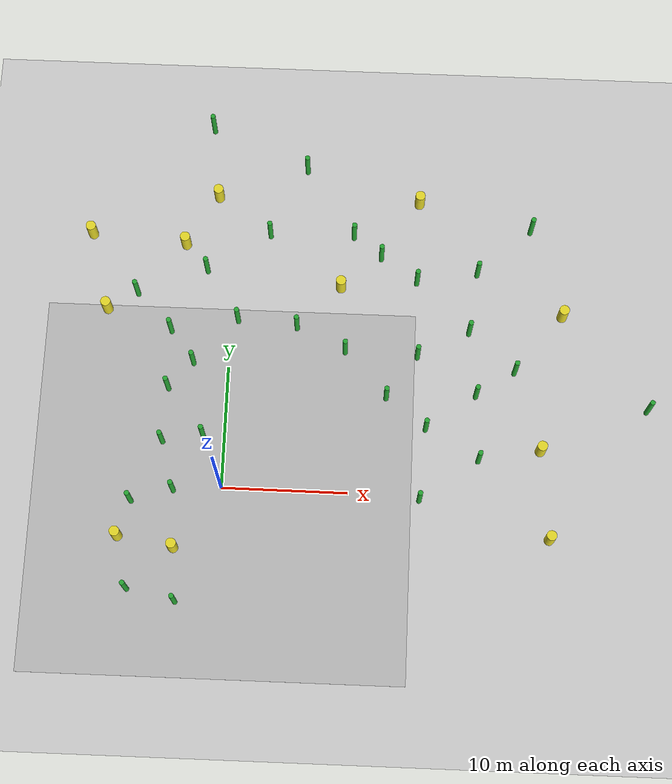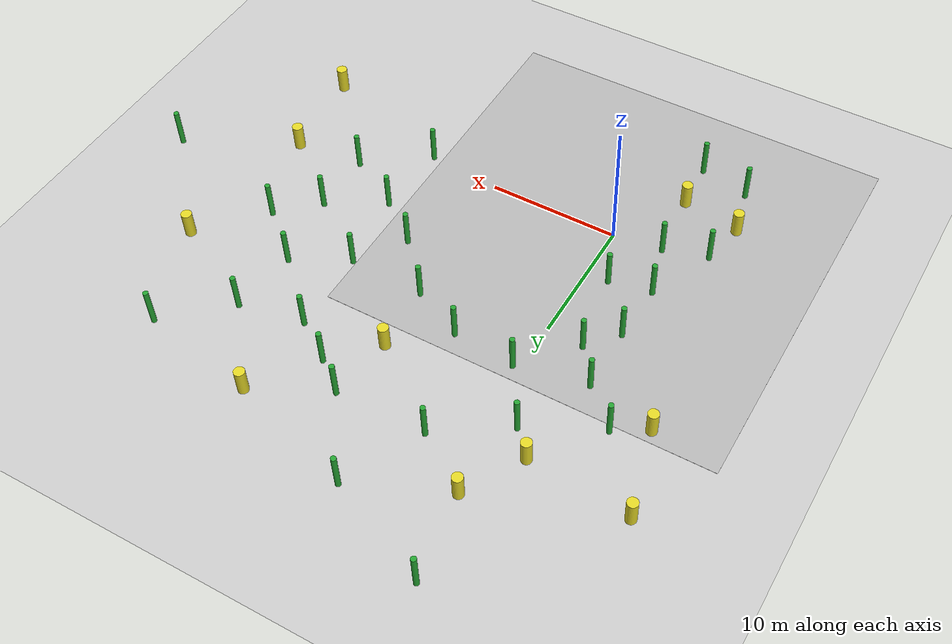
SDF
<sdf version="1.7">
 <world name="default">
  <model name="ground_plane">
   <static>1</static>
   <link name="link">
    <collision name="collision">
     <geometry><plane><normal>0 0 1</normal><size>100 100</size></plane></geometry>
     <surface>
      <contact><collide_bitmask>65535</collide_bitmask></contact>
      <friction><ode><mu>100</mu><mu2>50</mu2></ode></friction>
     </surface>
    </collision>
    <visual name="visual">
     <cast_shadows>0</cast_shadows>
     <geometry><plane><normal>0 0 1</normal><size>100 100</size></plane></geometry>
     <material>
      <script><uri>file://media/materials/scripts/gazebo.material</uri><name>Gazebo/Grey</name></script>
     </material>
    </visual>
   </link>
  </model>
  <model name="texture">
   <pose>-0.022154 0.017687 0 0 -0 0</pose>
   <static>1</static>
   <link name="prometheus_logo">
    <visual name="visual">
     <cast_shadows>0</cast_shadows>
     <geometry><box><size>30 30 0.01</size></box></geometry>
     <material>
      <script><uri>model://prometheus_texture/texture.material</uri><name>prometheus_logo2</name></script>
     </material>
    </visual>
   </link>
  </model>
  <model name="cylinder1">
   <pose>9.0226 19.85 0 0 -0 0</pose>
   <frame name="obs_cylinder_small::__model__" attached_to="obs_cylinder_small::link">
    <pose relative_to="__model__">3 0 1.5 0 -0 0</pose>
   </frame>
   <link name="obs_cylinder_small::link">
    <inertial><mass>1</mass></inertial>
    <pose relative_to="obs_cylinder_small::__model__">0 0 0 0 -0 0</pose>
    <visual name="visual">
     <geometry><cylinder><radius>0.2</radius><length>3</length></cylinder></geometry>
     <material>
      <script><name>Gazebo/Green</name><uri>file://media/materials/scripts/gazebo.material</uri></script>
     </material>
    </visual>
    <collision name="collision">
     <geometry><cylinder><radius>0.25</radius><length>3</length></cylinder></geometry>
    </collision>
   </link>
   <static>1</static>
  </model>
  <model name="cylinder9">
   <pose>8.9225 5.15263 0 0 -0 0</pose>
   <frame name="obs_cylinder_small::__model__" attached_to="obs_cylinder_small::link">
    <pose relative_to="__model__">11 3 2 0 -0 0</pose>
   </frame>
   <link name="obs_cylinder_small::link">
    <inertial><mass>1</mass></inertial>
    <pose relative_to="obs_cylinder_small::__model__">0 0 0 0 -0 0</pose>
    <visual name="visual">
     <geometry><cylinder><radius>0.2</radius><length>3</length></cylinder></geometry>
     <material>
      <script><name>Gazebo/Green</name><uri>file://media/materials/scripts/gazebo.material</uri></script>
     </material>
    </visual>
    <collision name="collision">
     <geometry><cylinder><radius>0.25</radius><length>3</length></cylinder></geometry>
    </collision>
   </link>
   <static>1</static>
  </model>
  <model name="cylinder2">
   <pose>-12.6689 13.8388 0 0 -0 0</pose>
   <frame name="obs_cylinder_small::__model__" attached_to="obs_cylinder_small::link">
    <pose relative_to="__model__">5 2 2 0 -0 0</pose>
   </frame>
   <link name="obs_cylinder_small::link">
    <inertial><mass>1</mass></inertial>
    <pose relative_to="obs_cylinder_small::__model__">0 0 0 0 -0 0</pose>
    <visual name="visual">
     <geometry><cylinder><radius>0.2</radius><length>3</length></cylinder></geometry>
     <material>
      <script><name>Gazebo/Green</name><uri>file://media/materials/scripts/gazebo.material</uri></script>
     </material>
    </visual>
    <collision name="collision">
     <geometry><cylinder><radius>0.25</radius><length>3</length></cylinder></geometry>
    </collision>
   </link>
   <static>1</static>
  </model>
  <model name="cylinder5">
   <pose>0.10423 1.60114 0 0 -0 0</pose>
   <frame name="obs_cylinder_small::__model__" attached_to="obs_cylinder_small::link">
    <pose relative_to="__model__">-5 2 1.5 0 -0 0</pose>
   </frame>
   <link name="obs_cylinder_small::link">
    <inertial><mass>1</mass></inertial>
    <pose relative_to="obs_cylinder_small::__model__">0 0 0 0 -0 0</pose>
    <visual name="visual">
     <geometry><cylinder><radius>0.2</radius><length>3</length></cylinder></geometry>
     <material>
      <script><name>Gazebo/Green</name><uri>file://media/materials/scripts/gazebo.material</uri></script>
     </material>
    </visual>
    <collision name="collision">
     <geometry><cylinder><radius>0.25</radius><length>3</length></cylinder></geometry>
    </collision>
   </link>
   <static>1</static>
  </model>
  <model name="cylinder6">
   <pose>-2.04873 0.66566 0 0 -0 0</pose>
   <frame name="obs_cylinder_small::__model__" attached_to="obs_cylinder_small::link">
    <pose relative_to="__model__">-5 -2 1.5 0 -0 0</pose>
   </frame>
   <link name="obs_cylinder_small::link">
    <inertial><mass>1</mass></inertial>
    <pose relative_to="obs_cylinder_small::__model__">0 0 0 0 -0 0</pose>
    <visual name="visual">
     <geometry><cylinder><radius>0.2</radius><length>3</length></cylinder></geometry>
     <material>
      <script><name>Gazebo/Green</name><uri>file://media/materials/scripts/gazebo.material</uri></script>
     </material>
    </visual>
    <collision name="collision">
     <geometry><cylinder><radius>0.25</radius><length>3</length></cylinder></geometry>
    </collision>
   </link>
   <static>1</static>
  </model>
  <model name="cylinder4_clone_0">
   <pose>-0.85021 6.24417 0 0 -0 0</pose>
   <frame name="obs_cylinder_small::__model__" attached_to="obs_cylinder_small::link">
    <pose relative_to="__model__">-1.97992 4.00703 1.5 0 -0 0</pose>
   </frame>
   <link name="obs_cylinder_small::link">
    <inertial><mass>1</mass></inertial>
    <pose relative_to="obs_cylinder_small::__model__">0 0 0 0 -0 0</pose>
    <visual name="visual">
     <geometry><cylinder><radius>0.2</radius><length>3</length></cylinder></geometry>
     <material>
      <script><name>Gazebo/Green</name><uri>file://media/materials/scripts/gazebo.material</uri></script>
     </material>
    </visual>
    <collision name="collision">
     <geometry><cylinder><radius>0.25</radius><length>3</length></cylinder></geometry>
    </collision>
   </link>
   <static>1</static>
  </model>
  <model name="cylinder4_clone_1">
   <pose>-1.81173 1.66661 0 0 -0 0</pose>
   <frame name="obs_cylinder_small::__model__" attached_to="obs_cylinder_small::link">
    <pose relative_to="__model__">-1.9564 -2.0159 1.5 0 -0 0</pose>
   </frame>
   <link name="obs_cylinder_small::link">
    <inertial><mass>1</mass></inertial>
    <pose relative_to="obs_cylinder_small::__model__">0 0 0 0 -0 0</pose>
    <visual name="visual">
     <geometry><cylinder><radius>0.2</radius><length>3</length></cylinder></geometry>
     <material>
      <script><name>Gazebo/Green</name><uri>file://media/materials/scripts/gazebo.material</uri></script>
     </material>
    </visual>
    <collision name="collision">
     <geometry><cylinder><radius>0.25</radius><length>3</length></cylinder></geometry>
    </collision>
   </link>
   <static>1</static>
  </model>
  <model name="cylinder4_clone_12">
   <pose>24.5866 10.4494 0 0 -0 0</pose>
   <frame name="obs_cylinder_small::__model__" attached_to="obs_cylinder_small::link">
    <pose relative_to="__model__">9.0896 -2.91154 1.5 0 -0 0</pose>
   </frame>
   <link name="obs_cylinder_small::link">
    <inertial><mass>1</mass></inertial>
    <pose relative_to="obs_cylinder_small::__model__">0 0 0 0 -0 0</pose>
    <visual name="visual">
     <geometry><cylinder><radius>0.2</radius><length>3</length></cylinder></geometry>
     <material>
      <script><name>Gazebo/Green</name><uri>file://media/materials/scripts/gazebo.material</uri></script>
     </material>
    </visual>
    <collision name="collision">
     <geometry><cylinder><radius>0.25</radius><length>3</length></cylinder></geometry>
    </collision>
   </link>
   <static>1</static>
  </model>
  <model name="cylinder4_clone_14">
   <pose>-6.05536 15.1916 0 0 -0 0</pose>
   <frame name="obs_cylinder_large::__model__" attached_to="obs_cylinder_large::link">
    <pose relative_to="__model__">2.02671 5.11168 1.5 0 -0 0</pose>
   </frame>
   <link name="obs_cylinder_large::link">
    <inertial><mass>1</mass></inertial>
    <pose relative_to="obs_cylinder_large::__model__">0 0 0 0 -0 0</pose>
    <visual name="visual">
     <geometry><cylinder><radius>0.4</radius><length>2</length></cylinder></geometry>
     <material>
      <script><name>Gazebo/Yellow</name><uri>file://media/materials/scripts/gazebo.material</uri></script>
     </material>
    </visual>
    <collision name="collision">
     <geometry><cylinder><radius>0.25</radius><length>2</length></cylinder></geometry>
    </collision>
   </link>
   <static>1</static>
  </model>
  <model name="cylinder4_clone_16">
   <pose>-13.3105 21.4087 0 0 -0 0</pose>
   <frame name="obs_cylinder_large::__model__" attached_to="obs_cylinder_large::link">
    <pose relative_to="__model__">1.547 -0.460893 1.5 0 -0 0</pose>
   </frame>
   <link name="obs_cylinder_large::link">
    <inertial><mass>1</mass></inertial>
    <pose relative_to="obs_cylinder_large::__model__">0 0 0 0 -0 0</pose>
    <visual name="visual">
     <geometry><cylinder><radius>0.4</radius><length>2</length></cylinder></geometry>
     <material>
      <script><name>Gazebo/Yellow</name><uri>file://media/materials/scripts/gazebo.material</uri></script>
     </material>
    </visual>
    <collision name="collision">
     <geometry><cylinder><radius>0.25</radius><length>2</length></cylinder></geometry>
    </collision>
   </link>
   <static>1</static>
  </model>
  <model name="cylinder4_clone_17">
   <pose>-2.4282 -1.09738 0 0 -0 0</pose>
   <frame name="obs_cylinder_large::__model__" attached_to="obs_cylinder_large::link">
    <pose relative_to="__model__">-1.00318 -3.92453 1.5 0 -0 0</pose>
   </frame>
   <link name="obs_cylinder_large::link">
    <inertial><mass>1</mass></inertial>
    <pose relative_to="obs_cylinder_large::__model__">0 0 0 0 -0 0</pose>
    <visual name="visual">
     <geometry><cylinder><radius>0.4</radius><length>2</length></cylinder></geometry>
     <material>
      <script><name>Gazebo/Yellow</name><uri>file://media/materials/scripts/gazebo.material</uri></script>
     </material>
    </visual>
    <collision name="collision">
     <geometry><cylinder><radius>0.25</radius><length>2</length></cylinder></geometry>
    </collision>
   </link>
   <static>1</static>
  </model>
  <model name="cylinder4_clone_18">
   <pose>-3.87392 -0.35835 0 0 -0 0</pose>
   <frame name="obs_cylinder_large::__model__" attached_to="obs_cylinder_large::link">
    <pose relative_to="__model__">-3.97554 -3.89536 1.5 0 -0 0</pose>
   </frame>
   <link name="obs_cylinder_large::link">
    <inertial><mass>1</mass></inertial>
    <pose relative_to="obs_cylinder_large::__model__">0 0 0 0 -0 0</pose>
    <visual name="visual">
     <geometry><cylinder><radius>0.4</radius><length>2</length></cylinder></geometry>
     <material>
      <script><name>Gazebo/Yellow</name><uri>file://media/materials/scripts/gazebo.material</uri></script>
     </material>
    </visual>
    <collision name="collision">
     <geometry><cylinder><radius>0.25</radius><length>2</length></cylinder></geometry>
    </collision>
   </link>
   <static>1</static>
  </model>
  <model name="cylinder3_clone_12">
   <pose>-0.01069 -3.15762 0 0 -0 0</pose>
   <frame name="obs_cylinder_small::__model__" attached_to="obs_cylinder_small::link">
    <pose relative_to="__model__">-3.04238 -6.01581 1.5 0 -0 0</pose>
   </frame>
   <link name="obs_cylinder_small::link">
    <inertial><mass>1</mass></inertial>
    <pose relative_to="obs_cylinder_small::__model__">0 0 0 0 -0 0</pose>
    <visual name="visual">
     <geometry><cylinder><radius>0.2</radius><length>3</length></cylinder></geometry>
     <material>
      <script><name>Gazebo/Green</name><uri>file://media/materials/scripts/gazebo.material</uri></script>
     </material>
    </visual>
    <collision name="collision">
     <geometry><cylinder><radius>0.25</radius><length>3</length></cylinder></geometry>
    </collision>
   </link>
   <static>1</static>
  </model>
  <model name="cylinder3_clone_13">
   <pose>-1.88921 -3.28731 0 0 -0 0</pose>
   <frame name="obs_cylinder_small::__model__" attached_to="obs_cylinder_small::link">
    <pose relative_to="__model__">-4.97933 -5.0259 1.5 0 -0 0</pose>
   </frame>
   <link name="obs_cylinder_small::link">
    <inertial><mass>1</mass></inertial>
    <pose relative_to="obs_cylinder_small::__model__">0 0 0 0 -0 0</pose>
    <visual name="visual">
     <geometry><cylinder><radius>0.2</radius><length>3</length></cylinder></geometry>
     <material>
      <script><name>Gazebo/Green</name><uri>file://media/materials/scripts/gazebo.material</uri></script>
     </material>
    </visual>
    <collision name="collision">
     <geometry><cylinder><radius>0.25</radius><length>3</length></cylinder></geometry>
    </collision>
   </link>
   <static>1</static>
  </model>
  <model name="cylinder3_clone_14">
   <pose>6.8163 2.89267 0 0 -0 0</pose>
   <frame name="obs_cylinder_small::__model__" attached_to="obs_cylinder_small::link">
    <pose relative_to="__model__">5.96757 5.00455 1.5 0 -0 0</pose>
   </frame>
   <link name="obs_cylinder_small::link">
    <inertial><mass>1</mass></inertial>
    <pose relative_to="obs_cylinder_small::__model__">0 0 0 0 -0 0</pose>
    <visual name="visual">
     <geometry><cylinder><radius>0.2</radius><length>3</length></cylinder></geometry>
     <material>
      <script><name>Gazebo/Green</name><uri>file://media/materials/scripts/gazebo.material</uri></script>
     </material>
    </visual>
    <collision name="collision">
     <geometry><cylinder><radius>0.25</radius><length>3</length></cylinder></geometry>
    </collision>
   </link>
   <static>1</static>
  </model>
  <model name="cylinder3_clone_2">
   <pose>-9.20412 20.1685 0 0 -0 0</pose>
   <frame name="obs_cylinder_small::__model__" attached_to="obs_cylinder_small::link">
    <pose relative_to="__model__">7.01908 -1.94151 1.5 0 -0 0</pose>
   </frame>
   <link name="obs_cylinder_small::link">
    <inertial><mass>1</mass></inertial>
    <pose relative_to="obs_cylinder_small::__model__">0 0 0 0 -0 0</pose>
    <visual name="visual">
     <geometry><cylinder><radius>0.2</radius><length>3</length></cylinder></geometry>
     <material>
      <script><name>Gazebo/Green</name><uri>file://media/materials/scripts/gazebo.material</uri></script>
     </material>
    </visual>
    <collision name="collision">
     <geometry><cylinder><radius>0.25</radius><length>3</length></cylinder></geometry>
    </collision>
   </link>
   <static>1</static>
  </model>
  <model name="cylinder3_clone_5">
   <pose>0.16806 2.09006 0 0 -0 0</pose>
   <frame name="obs_cylinder_small::__model__" attached_to="obs_cylinder_small::link">
    <pose relative_to="__model__">-1.85729 2.09778 1.5 0 -0 0</pose>
   </frame>
   <link name="obs_cylinder_small::link">
    <inertial><mass>1</mass></inertial>
    <pose relative_to="obs_cylinder_small::__model__">0 0 0 0 -0 0</pose>
    <visual name="visual">
     <geometry><cylinder><radius>0.2</radius><length>3</length></cylinder></geometry>
     <material>
      <script><name>Gazebo/Green</name><uri>file://media/materials/scripts/gazebo.material</uri></script>
     </material>
    </visual>
    <collision name="collision">
     <geometry><cylinder><radius>0.25</radius><length>3</length></cylinder></geometry>
    </collision>
   </link>
   <static>1</static>
  </model>
  <model name="cylinder4_clone_20_clone">
   <frame name="obs_cylinder_large::__model__" attached_to="obs_cylinder_large::link">
    <pose relative_to="__model__">-3.99798 4.28559 1.5 0 -0 0</pose>
   </frame>
   <link name="obs_cylinder_large::link">
    <inertial><mass>1</mass></inertial>
    <pose relative_to="obs_cylinder_large::__model__">0 0 0 0 -0 0</pose>
    <visual name="visual">
     <geometry><cylinder><radius>0.4</radius><length>2</length></cylinder></geometry>
     <material>
      <script><name>Gazebo/Yellow</name><uri>file://media/materials/scripts/gazebo.material</uri></script>
     </material>
    </visual>
    <collision name="collision">
     <geometry><cylinder><radius>0.25</radius><length>2</length></cylinder></geometry>
    </collision>
   </link>
   <static>1</static>
   <pose>-6.05042 10.1763 0 0 -0 0</pose>
  </model>
  <model name="cylinder4_clone_11_clone">
   <frame name="obs_cylinder_small::__model__" attached_to="obs_cylinder_small::link">
    <pose relative_to="__model__">9.0654 0.083267 1.5 0 -0 0</pose>
   </frame>
   <link name="obs_cylinder_small::link">
    <inertial><mass>1</mass></inertial>
    <pose relative_to="obs_cylinder_small::__model__">0 0 0 0 -0 0</pose>
    <visual name="visual">
     <geometry><cylinder><radius>0.2</radius><length>3</length></cylinder></geometry>
     <material>
      <script><name>Gazebo/Green</name><uri>file://media/materials/scripts/gazebo.material</uri></script>
     </material>
    </visual>
    <collision name="collision">
     <geometry><cylinder><radius>0.25</radius><length>3</length></cylinder></geometry>
    </collision>
   </link>
   <static>1</static>
   <pose>-13.786 7.94688 0 0 -0 0</pose>
  </model>
  <model name="cylinder4_clone_11_clone_1">
   <frame name="obs_cylinder_small::__model__" attached_to="obs_cylinder_small::link">
    <pose relative_to="__model__">9.0654 0.083267 1.5 0 -0 0</pose>
   </frame>
   <link name="obs_cylinder_small::link">
    <inertial><mass>1</mass></inertial>
    <pose relative_to="obs_cylinder_small::__model__">0 0 0 0 -0 0</pose>
    <visual name="visual">
     <geometry><cylinder><radius>0.2</radius><length>3</length></cylinder></geometry>
     <material>
      <script><name>Gazebo/Green</name><uri>file://media/materials/scripts/gazebo.material</uri></script>
     </material>
    </visual>
    <collision name="collision">
     <geometry><cylinder><radius>0.25</radius><length>3</length></cylinder></geometry>
    </collision>
   </link>
   <static>1</static>
   <pose>-13.8601 12.8255 0 0 -0 0</pose>
  </model>
  <model name="cylinder4_clone_11_clone_2">
   <frame name="obs_cylinder_small::__model__" attached_to="obs_cylinder_small::link">
    <pose relative_to="__model__">9.0654 0.083267 1.5 0 -0 0</pose>
   </frame>
   <link name="obs_cylinder_small::link">
    <inertial><mass>1</mass></inertial>
    <pose relative_to="obs_cylinder_small::__model__">0 0 0 0 -0 0</pose>
    <visual name="visual">
     <geometry><cylinder><radius>0.2</radius><length>3</length></cylinder></geometry>
     <material>
      <script><name>Gazebo/Green</name><uri>file://media/materials/scripts/gazebo.material</uri></script>
     </material>
    </visual>
    <collision name="collision">
     <geometry><cylinder><radius>0.25</radius><length>3</length></cylinder></geometry>
    </collision>
   </link>
   <static>1</static>
   <pose>-8.49884 13.901 0 0 -0 0</pose>
  </model>
  <model name="cylinder4_clone_11_clone_3">
   <frame name="obs_cylinder_small::__model__" attached_to="obs_cylinder_small::link">
    <pose relative_to="__model__">9.0654 0.083267 1.5 0 -0 0</pose>
   </frame>
   <link name="obs_cylinder_small::link">
    <inertial><mass>1</mass></inertial>
    <pose relative_to="obs_cylinder_small::__model__">0 0 0 0 -0 0</pose>
    <visual name="visual">
     <geometry><cylinder><radius>0.2</radius><length>3</length></cylinder></geometry>
     <material>
      <script><name>Gazebo/Green</name><uri>file://media/materials/scripts/gazebo.material</uri></script>
     </material>
    </visual>
    <collision name="collision">
     <geometry><cylinder><radius>0.25</radius><length>3</length></cylinder></geometry>
    </collision>
   </link>
   <static>1</static>
   <pose>-3.6885 13.4723 0 0 -0 0</pose>
  </model>
  <model name="cylinder4_clone_11_clone_4">
   <frame name="obs_cylinder_small::__model__" attached_to="obs_cylinder_small::link">
    <pose relative_to="__model__">9.0654 0.083267 1.5 0 -0 0</pose>
   </frame>
   <link name="obs_cylinder_small::link">
    <inertial><mass>1</mass></inertial>
    <pose relative_to="obs_cylinder_small::__model__">0 0 0 0 -0 0</pose>
    <visual name="visual">
     <geometry><cylinder><radius>0.2</radius><length>3</length></cylinder></geometry>
     <material>
      <script><name>Gazebo/Green</name><uri>file://media/materials/scripts/gazebo.material</uri></script>
     </material>
    </visual>
    <collision name="collision">
     <geometry><cylinder><radius>0.25</radius><length>3</length></cylinder></geometry>
    </collision>
   </link>
   <static>1</static>
   <pose>0.29765 11.5721 0 0 -0 0</pose>
  </model>
  <model name="cylinder4_clone_11_clone_20">
   <frame name="obs_cylinder_small::__model__" attached_to="obs_cylinder_small::link">
    <pose relative_to="__model__">9.0654 0.083267 1.5 0 -0 0</pose>
   </frame>
   <link name="obs_cylinder_small::link">
    <inertial><mass>1</mass></inertial>
    <pose relative_to="obs_cylinder_small::__model__">0 0 0 0 -0 0</pose>
    <visual name="visual">
     <geometry><cylinder><radius>0.2</radius><length>3</length></cylinder></geometry>
     <material>
      <script><name>Gazebo/Green</name><uri>file://media/materials/scripts/gazebo.material</uri></script>
     </material>
    </visual>
    <collision name="collision">
     <geometry><cylinder><radius>0.25</radius><length>3</length></cylinder></geometry>
    </collision>
   </link>
   <static>1</static>
   <pose>11.1784 2.87603 0 0 -0 0</pose>
  </model>
  <model name="cylinder4_clone_11_clone_22">
   <frame name="obs_cylinder_small::__model__" attached_to="obs_cylinder_small::link">
    <pose relative_to="__model__">9.0654 0.083267 1.5 0 -0 0</pose>
   </frame>
   <link name="obs_cylinder_small::link">
    <inertial><mass>1</mass></inertial>
    <pose relative_to="obs_cylinder_small::__model__">0 0 0 0 -0 0</pose>
    <visual name="visual">
     <geometry><cylinder><radius>0.2</radius><length>3</length></cylinder></geometry>
     <material>
      <script><name>Gazebo/Green</name><uri>file://media/materials/scripts/gazebo.material</uri></script>
     </material>
    </visual>
    <collision name="collision">
     <geometry><cylinder><radius>0.25</radius><length>3</length></cylinder></geometry>
    </collision>
   </link>
   <static>1</static>
   <pose>6.5751 -0.513346 0 0 -0 0</pose>
  </model>
  <model name="cylinder4_clone_11_clone_23">
   <frame name="obs_cylinder_small::__model__" attached_to="obs_cylinder_small::link">
    <pose relative_to="__model__">9.0654 0.083267 1.5 0 -0 0</pose>
   </frame>
   <link name="obs_cylinder_small::link">
    <inertial><mass>1</mass></inertial>
    <pose relative_to="obs_cylinder_small::__model__">0 0 0 0 -0 0</pose>
    <visual name="visual">
     <geometry><cylinder><radius>0.2</radius><length>3</length></cylinder></geometry>
     <material>
      <script><name>Gazebo/Green</name><uri>file://media/materials/scripts/gazebo.material</uri></script>
     </material>
    </visual>
    <collision name="collision">
     <geometry><cylinder><radius>0.25</radius><length>3</length></cylinder></geometry>
    </collision>
   </link>
   <static>1</static>
   <pose>6.9415 5.32404 0 0 -0 0</pose>
  </model>
  <model name="cylinder4_clone_11_clone_24">
   <frame name="obs_cylinder_small::__model__" attached_to="obs_cylinder_small::link">
    <pose relative_to="__model__">9.0654 0.083267 1.5 0 -0 0</pose>
   </frame>
   <link name="obs_cylinder_small::link">
    <inertial><mass>1</mass></inertial>
    <pose relative_to="obs_cylinder_small::__model__">0 0 0 0 -0 0</pose>
    <visual name="visual">
     <geometry><cylinder><radius>0.2</radius><length>3</length></cylinder></geometry>
     <material>
      <script><name>Gazebo/Green</name><uri>file://media/materials/scripts/gazebo.material</uri></script>
     </material>
    </visual>
    <collision name="collision">
     <geometry><cylinder><radius>0.25</radius><length>3</length></cylinder></geometry>
    </collision>
   </link>
   <static>1</static>
   <pose>13.9803 10.314 0 0 -0 0</pose>
  </model>
  <model name="cylinder4_clone_11_clone_25">
   <frame name="obs_cylinder_small::__model__" attached_to="obs_cylinder_small::link">
    <pose relative_to="__model__">9.0654 0.083267 1.5 0 -0 0</pose>
   </frame>
   <link name="obs_cylinder_small::link">
    <inertial><mass>1</mass></inertial>
    <pose relative_to="obs_cylinder_small::__model__">0 0 0 0 -0 0</pose>
    <visual name="visual">
     <geometry><cylinder><radius>0.2</radius><length>3</length></cylinder></geometry>
     <material>
      <script><name>Gazebo/Green</name><uri>file://media/materials/scripts/gazebo.material</uri></script>
     </material>
    </visual>
    <collision name="collision">
     <geometry><cylinder><radius>0.25</radius><length>3</length></cylinder></geometry>
    </collision>
   </link>
   <static>1</static>
   <pose>10.2637 13.5474 0 0 -0 0</pose>
  </model>
  <model name="cylinder4_clone_11_clone_26">
   <frame name="obs_cylinder_small::__model__" attached_to="obs_cylinder_small::link">
    <pose relative_to="__model__">9.0654 0.083267 1.5 0 -0 0</pose>
   </frame>
   <link name="obs_cylinder_small::link">
    <inertial><mass>1</mass></inertial>
    <pose relative_to="obs_cylinder_small::__model__">0 0 0 0 -0 0</pose>
    <visual name="visual">
     <geometry><cylinder><radius>0.2</radius><length>3</length></cylinder></geometry>
     <material>
      <script><name>Gazebo/Green</name><uri>file://media/materials/scripts/gazebo.material</uri></script>
     </material>
    </visual>
    <collision name="collision">
     <geometry><cylinder><radius>0.25</radius><length>3</length></cylinder></geometry>
    </collision>
   </link>
   <static>1</static>
   <pose>10.856 18.648 0 0 -0 0</pose>
  </model>
  <model name="cylinder4_clone_11_clone_27">
   <frame name="obs_cylinder_small::__model__" attached_to="obs_cylinder_small::link">
    <pose relative_to="__model__">9.0654 0.083267 1.5 0 -0 0</pose>
   </frame>
   <link name="obs_cylinder_small::link">
    <inertial><mass>1</mass></inertial>
    <pose relative_to="obs_cylinder_small::__model__">0 0 0 0 -0 0</pose>
    <visual name="visual">
     <geometry><cylinder><radius>0.2</radius><length>3</length></cylinder></geometry>
     <material>
      <script><name>Gazebo/Green</name><uri>file://media/materials/scripts/gazebo.material</uri></script>
     </material>
    </visual>
    <collision name="collision">
     <geometry><cylinder><radius>0.25</radius><length>3</length></cylinder></geometry>
    </collision>
   </link>
   <static>1</static>
   <pose>5.9273 17.7356 0 0 -0 0</pose>
  </model>
  <model name="cylinder4_clone_11_clone_28">
   <frame name="obs_cylinder_small::__model__" attached_to="obs_cylinder_small::link">
    <pose relative_to="__model__">9.0654 0.083267 1.5 0 -0 0</pose>
   </frame>
   <link name="obs_cylinder_small::link">
    <inertial><mass>1</mass></inertial>
    <pose relative_to="obs_cylinder_small::__model__">0 0 0 0 -0 0</pose>
    <visual name="visual">
     <geometry><cylinder><radius>0.2</radius><length>3</length></cylinder></geometry>
     <material>
      <script><name>Gazebo/Green</name><uri>file://media/materials/scripts/gazebo.material</uri></script>
     </material>
    </visual>
    <collision name="collision">
     <geometry><cylinder><radius>0.25</radius><length>3</length></cylinder></geometry>
    </collision>
   </link>
   <static>1</static>
   <pose>6.1265 11.3568 0 0 -0 0</pose>
  </model>
  <model name="cylinder4_clone_11_clone_31">
   <frame name="obs_cylinder_small::__model__" attached_to="obs_cylinder_small::link">
    <pose relative_to="__model__">9.0654 0.083267 1.5 0 -0 0</pose>
   </frame>
   <link name="obs_cylinder_small::link">
    <inertial><mass>1</mass></inertial>
    <pose relative_to="obs_cylinder_small::__model__">0 0 0 0 -0 0</pose>
    <visual name="visual">
     <geometry><cylinder><radius>0.2</radius><length>3</length></cylinder></geometry>
     <material>
      <script><name>Gazebo/Green</name><uri>file://media/materials/scripts/gazebo.material</uri></script>
     </material>
    </visual>
    <collision name="collision">
     <geometry><cylinder><radius>0.25</radius><length>3</length></cylinder></geometry>
    </collision>
   </link>
   <static>1</static>
   <pose>0.66272 21.559 0 0 -0 0</pose>
  </model>
  <model name="cylinder4_clone_11_clone_32">
   <frame name="obs_cylinder_small::__model__" attached_to="obs_cylinder_small::link">
    <pose relative_to="__model__">9.0654 0.083267 1.5 0 -0 0</pose>
   </frame>
   <link name="obs_cylinder_small::link">
    <inertial><mass>1</mass></inertial>
    <pose relative_to="obs_cylinder_small::__model__">0 0 0 0 -0 0</pose>
    <visual name="visual">
     <geometry><cylinder><radius>0.2</radius><length>3</length></cylinder></geometry>
     <material>
      <script><name>Gazebo/Green</name><uri>file://media/materials/scripts/gazebo.material</uri></script>
     </material>
    </visual>
    <collision name="collision">
     <geometry><cylinder><radius>0.25</radius><length>3</length></cylinder></geometry>
    </collision>
   </link>
   <static>1</static>
   <pose>-6.23119 21.4402 0 0 -0 0</pose>
  </model>
  <model name="cylinder4_clone_17_clone">
   <frame name="obs_cylinder_large::__model__" attached_to="obs_cylinder_large::link">
    <pose relative_to="__model__">-1.00318 -3.92453 1.5 0 -0 0</pose>
   </frame>
   <link name="obs_cylinder_large::link">
    <inertial><mass>1</mass></inertial>
    <pose relative_to="obs_cylinder_large::__model__">0 0 0 0 -0 0</pose>
    <visual name="visual">
     <geometry><cylinder><radius>0.4</radius><length>2</length></cylinder></geometry>
     <material>
      <script><name>Gazebo/Yellow</name><uri>file://media/materials/scripts/gazebo.material</uri></script>
     </material>
    </visual>
    <collision name="collision">
     <geometry><cylinder><radius>0.25</radius><length>2</length></cylinder></geometry>
    </collision>
   </link>
   <static>1</static>
   <pose>26.847 0.64884 0 0 -0 0</pose>
  </model>
  <model name="cylinder4_clone_17_clone_2">
   <frame name="obs_cylinder_large::__model__" attached_to="obs_cylinder_large::link">
    <pose relative_to="__model__">-1.00318 -3.92453 1.5 0 -0 0</pose>
   </frame>
   <link name="obs_cylinder_large::link">
    <inertial><mass>1</mass></inertial>
    <pose relative_to="obs_cylinder_large::__model__">0 0 0 0 -0 0</pose>
    <visual name="visual">
     <geometry><cylinder><radius>0.4</radius><length>2</length></cylinder></geometry>
     <material>
      <script><name>Gazebo/Yellow</name><uri>file://media/materials/scripts/gazebo.material</uri></script>
     </material>
    </visual>
    <collision name="collision">
     <geometry><cylinder><radius>0.25</radius><length>2</length></cylinder></geometry>
    </collision>
   </link>
   <static>1</static>
   <pose>26.113 7.7585 0 0 -0 0</pose>
  </model>
  <model name="cylinder4_clone_17_clone_3">
   <frame name="obs_cylinder_large::__model__" attached_to="obs_cylinder_large::link">
    <pose relative_to="__model__">-1.00318 -3.92453 1.5 0 -0 0</pose>
   </frame>
   <link name="obs_cylinder_large::link">
    <inertial><mass>1</mass></inertial>
    <pose relative_to="obs_cylinder_large::__model__">0 0 0 0 -0 0</pose>
    <visual name="visual">
     <geometry><cylinder><radius>0.4</radius><length>2</length></cylinder></geometry>
     <material>
      <script><name>Gazebo/Yellow</name><uri>file://media/materials/scripts/gazebo.material</uri></script>
     </material>
    </visual>
    <collision name="collision">
     <geometry><cylinder><radius>0.25</radius><length>2</length></cylinder></geometry>
    </collision>
   </link>
   <static>1</static>
   <pose>27.8251 19.092 0 0 -0 0</pose>
  </model>
  <model name="cylinder4_clone_17_clone_4">
   <frame name="obs_cylinder_large::__model__" attached_to="obs_cylinder_large::link">
    <pose relative_to="__model__">-1.00318 -3.92453 1.5 0 -0 0</pose>
   </frame>
   <link name="obs_cylinder_large::link">
    <inertial><mass>1</mass></inertial>
    <pose relative_to="obs_cylinder_large::__model__">0 0 0 0 -0 0</pose>
    <visual name="visual">
     <geometry><cylinder><radius>0.4</radius><length>2</length></cylinder></geometry>
     <material>
      <script><name>Gazebo/Yellow</name><uri>file://media/materials/scripts/gazebo.material</uri></script>
     </material>
    </visual>
    <collision name="collision">
     <geometry><cylinder><radius>0.25</radius><length>2</length></cylinder></geometry>
    </collision>
   </link>
   <static>1</static>
   <pose>9.81869 20.9322 0 0 -0 0</pose>
  </model>
  <model name="cylinder4_clone_17_clone_5_clone_4">
   <frame name="obs_cylinder_large::__model__" attached_to="obs_cylinder_large::link">
    <pose relative_to="__model__">-1.00318 -3.92453 1.5 0 -0 0</pose>
   </frame>
   <link name="obs_cylinder_large::link">
    <inertial><mass>1</mass></inertial>
    <pose relative_to="obs_cylinder_large::__model__">0 0 0 0 -0 0</pose>
    <visual name="visual">
     <geometry><cylinder><radius>0.4</radius><length>2</length></cylinder></geometry>
     <material>
      <script><name>Gazebo/Yellow</name><uri>file://media/materials/scripts/gazebo.material</uri></script>
     </material>
    </visual>
    <collision name="collision">
     <geometry><cylinder><radius>0.25</radius><length>2</length></cylinder></geometry>
    </collision>
   </link>
   <static>1</static>
   <pose>-0.55344 28.5212 0 0 -0 0</pose>
  </model>
  <model name="cylinder4_clone_17_clone_5_clone_5">
   <frame name="obs_cylinder_large::__model__" attached_to="obs_cylinder_large::link">
    <pose relative_to="__model__">-1.00318 -3.92453 1.5 0 -0 0</pose>
   </frame>
   <link name="obs_cylinder_large::link">
    <inertial><mass>1</mass></inertial>
    <pose relative_to="obs_cylinder_large::__model__">0 0 0 0 -0 0</pose>
    <visual name="visual">
     <geometry><cylinder><radius>0.4</radius><length>2</length></cylinder></geometry>
     <material>
      <script><name>Gazebo/Yellow</name><uri>file://media/materials/scripts/gazebo.material</uri></script>
     </material>
    </visual>
    <collision name="collision">
     <geometry><cylinder><radius>0.25</radius><length>2</length></cylinder></geometry>
    </collision>
   </link>
   <static>1</static>
   <pose>16.029 28.5646 0 0 -0 0</pose>
  </model>
  <model name="cylinder4_clone_11_clone_27_clone_6">
   <frame name="obs_cylinder_small::__model__" attached_to="obs_cylinder_small::link">
    <pose relative_to="__model__">9.0654 0.083267 1.5 0 -0 0</pose>
   </frame>
   <link name="obs_cylinder_small::link">
    <inertial><mass>1</mass></inertial>
    <pose relative_to="obs_cylinder_small::__model__">0 0 0 0 -0 0</pose>
    <visual name="visual">
     <geometry><cylinder><radius>0.2</radius><length>3</length></cylinder></geometry>
     <material>
      <script><name>Gazebo/Green</name><uri>file://media/materials/scripts/gazebo.material</uri></script>
     </material>
    </visual>
    <collision name="collision">
     <geometry><cylinder><radius>0.25</radius><length>3</length></cylinder></geometry>
    </collision>
   </link>
   <static>1</static>
   <pose>15.2041 22.5894 0 0 -0 0</pose>
  </model>
  <model name="cylinder4_clone_11_clone_27_clone_7">
   <frame name="obs_cylinder_small::__model__" attached_to="obs_cylinder_small::link">
    <pose relative_to="__model__">9.0654 0.083267 1.5 0 -0 0</pose>
   </frame>
   <link name="obs_cylinder_small::link">
    <inertial><mass>1</mass></inertial>
    <pose relative_to="obs_cylinder_small::__model__">0 0 0 0 -0 0</pose>
    <visual name="visual">
     <geometry><cylinder><radius>0.2</radius><length>3</length></cylinder></geometry>
     <material>
      <script><name>Gazebo/Green</name><uri>file://media/materials/scripts/gazebo.material</uri></script>
     </material>
    </visual>
    <collision name="collision">
     <geometry><cylinder><radius>0.25</radius><length>3</length></cylinder></geometry>
    </collision>
   </link>
   <static>1</static>
   <pose>-3.42645 27.3422 0 0 -0 0</pose>
  </model>
  <model name="cylinder4_clone_11_clone_27_clone_5_clone_3">
   <frame name="obs_cylinder_small::__model__" attached_to="obs_cylinder_small::link">
    <pose relative_to="__model__">9.0654 0.083267 1.5 0 -0 0</pose>
   </frame>
   <link name="obs_cylinder_small::link">
    <inertial><mass>1</mass></inertial>
    <pose relative_to="obs_cylinder_small::__model__">0 0 0 0 -0 0</pose>
    <visual name="visual">
     <geometry><cylinder><radius>0.2</radius><length>3</length></cylinder></geometry>
     <material>
      <script><name>Gazebo/Green</name><uri>file://media/materials/scripts/gazebo.material</uri></script>
     </material>
    </visual>
    <collision name="collision">
     <geometry><cylinder><radius>0.25</radius><length>3</length></cylinder></geometry>
    </collision>
   </link>
   <static>1</static>
   <pose>-11.4296 30.7902 0 0 -0 0</pose>
  </model>
 </world>
</sdf>
